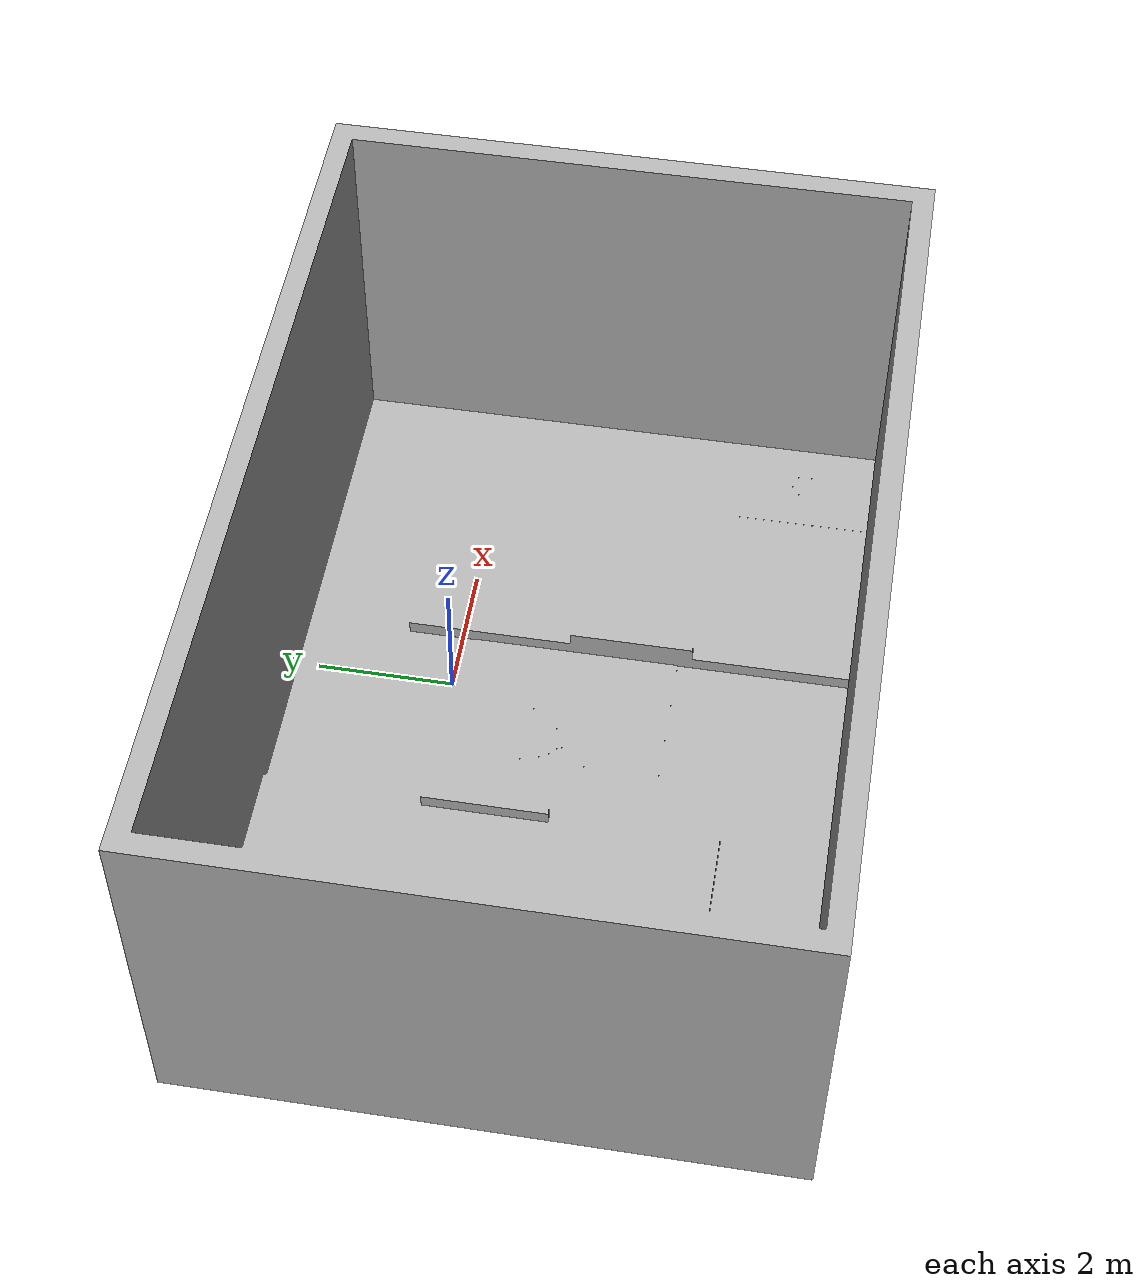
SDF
<?xml version='1.0' encoding='utf-8'?>
<sdf version='1.7'>
  <world name='default'>
    <!-- Physics -->
    <plugin filename="libignition-gazebo-physics-system.so" name="ignition::gazebo::systems::Physics">
    </plugin>

    <!-- Forwards simulation state to the GUI -->
    <plugin filename="libignition-gazebo-scene-broadcaster-system.so" name="ignition::gazebo::systems::SceneBroadcaster">
    </plugin>

    <!-- Processes user commands, like translate and create -->
    <plugin filename="libignition-gazebo-user-commands-system.so" name="ignition::gazebo::systems::UserCommands">
    </plugin>

    <!-- Generates rendering sensor data -->
    <plugin filename="libignition-gazebo-sensors-system.so" name="ignition::gazebo::systems::Sensors">
      <render_engine>ogre2</render_engine>
    </plugin>

    <plugin filename="libignition-gazebo-imu-system.so" name="ignition::gazebo::systems::Imu">
    </plugin>

    <light type='directional' name='direct_light'>
      <visualize>false</visualize>
      <cast_shadows>true</cast_shadows>
      <pose>7.4 3.6 10 0 0 0</pose>
      <diffuse>0.9 0.9 0.9 1</diffuse>
      <specular>0.7 0.7 0.7 1</specular>
      <attenuation>
        <range>1000</range>
        <constant>0.9</constant>
        <linear>0.01</linear>
        <quadratic>0.001</quadratic>
      </attenuation>
      <direction>0 0 -1</direction>
    </light>

    <!-- 侧向补光，增加地面细节的阴影与边缘对比 -->
    <light type='directional' name='rim_light'>
      <visualize>false</visualize>
      <cast_shadows>true</cast_shadows>
      <pose>-8 -8 8 0.1 0.2 0</pose>
      <diffuse>0.6 0.6 0.6 1</diffuse>
      <specular>0.6 0.6 0.6 1</specular>
      <attenuation>
        <range>1000</range>
        <constant>0.9</constant>
        <linear>0.02</linear>
        <quadratic>0.002</quadratic>
      </attenuation>
      <direction>0.35 0.25 -1</direction>
    </light>

    <model name='rmul_2026'>
      <include>
        <uri>model://rmul_2026</uri>
      </include>
      <pose>0.0 0.0 0 0 0 0</pose>
      <static>true</static>
    </model>
  </world>
</sdf>

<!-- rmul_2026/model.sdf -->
<sdf version='1.6'>
  <model name='rmul_2026'>
    <static>true</static>
    <link name='body'>
      <pose frame=''>-7 -6 0.0 0 0 0</pose>
      <self_collide>0</self_collide>
      <kinematic>0</kinematic>
      <gravity>1</gravity>
      <visual name='visual'>
        <geometry>
          <mesh>
            <uri>model://rmul_2026/meshes/rmul_2026.stl</uri>
            <scale>0.001 0.001 0.001</scale>
          </mesh>
        </geometry>
        <material>
          <ambient>0.3 0.3 0.3 1</ambient>
          <diffuse>0.7 0.7 0.7 1</diffuse>
          <specular>0.01 0.01 0.01 1</specular>
        </material>
      </visual>
      <collision name='collision'>
        <geometry>
          <mesh>
            <uri>model://rmul_2026/meshes/rmul_2026.stl</uri>
            <scale>0.001 0.001 0.001</scale>
          </mesh>
        </geometry>
      </collision>
    </link>
  </model>
</sdf>
